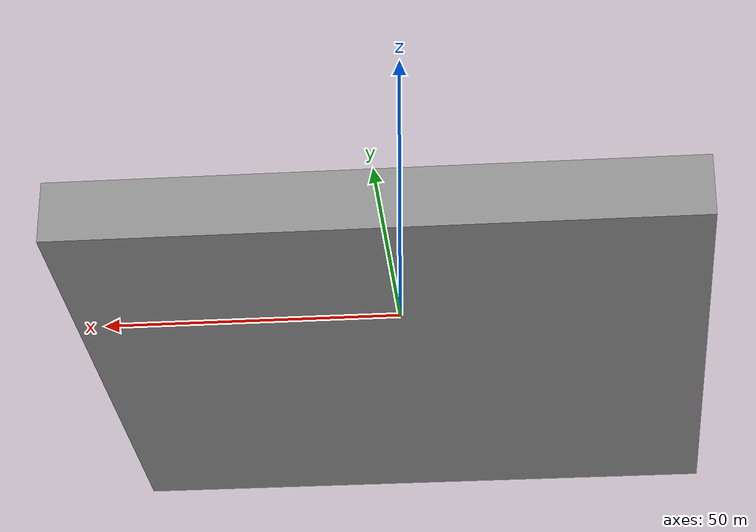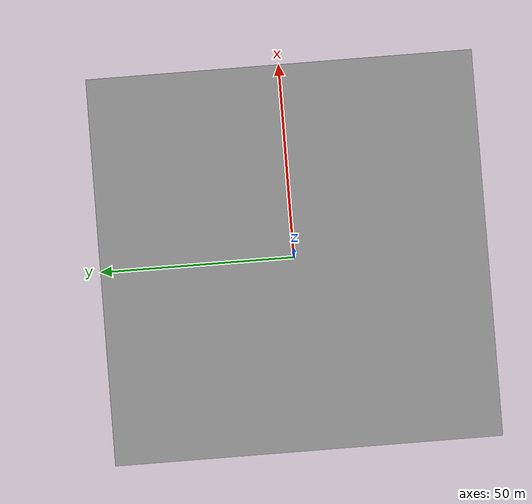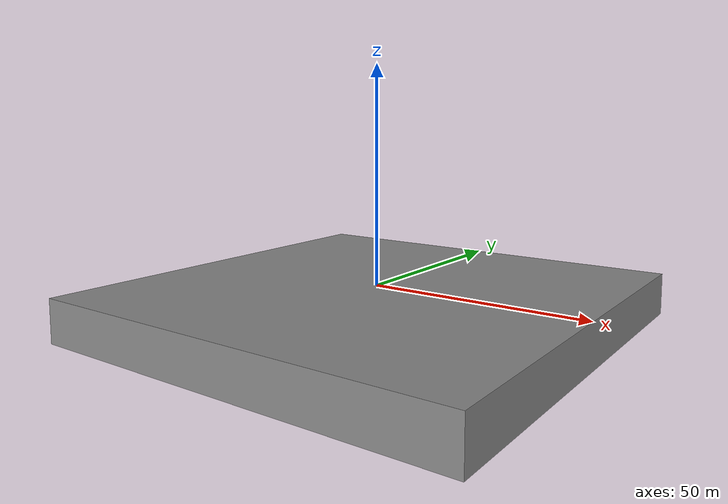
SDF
<?xml version='1.0'?>

<sdf version='1.6'>
  <model name='BipedalSpringMass'>

    <!-- GROUND -->

    <link name='ground'>
      <pose frame=''>0 0 -5 0 0.0 0.</pose>
      <inertial>
        <pose frame=''>0 0 0 0 0.0 0.</pose>
        <mass>0</mass>
        <inertia>
          <ixx>0</ixx>
          <ixy>0</ixy>
          <ixz>0</ixz>
          <iyy>0</iyy>
          <iyz>0</iyz>
          <izz>0</izz>
        </inertia>
      </inertial>
      <collision name='ground_collision'>
        <pose frame=''>0 0 0 0 0.0 0.</pose>
        <geometry>
          <box>
            <size>100.0 100.0 10.0</size>
          </box>
        </geometry>
      </collision>
      <visual name='ground_visual'>
        <pose frame=''>0 0 0 0 0.0 0.</pose>
        <geometry>
          <box>
            <size>100.0 100.0 10.0</size>
          </box>
        </geometry>
        <material>
          <diffuse>0.54 0.54 0.54 0.9</diffuse>
        </material>
      </visual>
    </link>

    <!-- BODY -->

    <link name='body_pre_z'/>
    <link name='body_pre_theta'/>

    <link name='body'>
      <pose frame=''>0 0 0 0 0 0</pose>
      <inertial>
        <pose frame=''>0 0 0 0 0 0</pose>
        <mass>.1</mass>
        <inertia>
          <ixx>100.0</ixx>
          <ixy>0</ixy>
          <ixz>0</ixz>
          <iyy>100.0</iyy>
          <iyz>0</iyz>
          <izz>100.0</izz>
        </inertia>
      </inertial>

      <visual name='body_visual'>
        <pose frame=''>0 0 0 0 0 0</pose>
        <geometry>
          <sphere>
             <radius> 0.3 </radius>
          </sphere>
        </geometry>
        <material>
          <diffuse>0.64 0.12 0.15 0.9</diffuse>
        </material>
      </visual>

    </link>

    <joint name='body_x' type='prismatic'>
      <child>body_pre_z</child>
      <parent>ground</parent>
      <axis>
        <xyz>1 0 0</xyz>
        <limit>
          <effort>0.0</effort>
        </limit>
        <dynamics>
          <damping>0</damping>
          <friction>0</friction>
          <spring_reference>0</spring_reference>
          <spring_stiffness>0</spring_stiffness>
        </dynamics>
        <use_parent_model_frame>1</use_parent_model_frame>
      </axis>
    </joint>

    <joint name='body_z' type='prismatic'>
      <child>body_pre_theta</child>
      <parent>body_pre_z</parent>
      <axis>
        <xyz>0 0 1</xyz>
        <limit>
          <effort>0.0</effort>
        </limit>
        <dynamics>
          <damping>0</damping>
          <friction>0</friction>
          <spring_reference>0</spring_reference>
          <spring_stiffness>0</spring_stiffness>
        </dynamics>
        <use_parent_model_frame>1</use_parent_model_frame>
      </axis>
    </joint>
    <joint name='body_theta' type='revolute'>
      <child>body</child>
      <parent>body_pre_theta</parent>
      <axis>
        <xyz>0 1 0</xyz>
        <limit>
          <effort>0.0</effort>
        </limit>
        <dynamics>
          <damping>0</damping>
          <friction>0</friction>
          <spring_reference>0</spring_reference>
          <spring_stiffness>0</spring_stiffness>
        </dynamics>
        <use_parent_model_frame>1</use_parent_model_frame>
      </axis>
    </joint>

    <!-- LEG 1 -->

    <link name='leg1_thigh'>
      <visual name='body_visual_ny'>
        <pose frame=''>0 0 0 0 0 0</pose>
        <geometry>
          <box>
            <size>0.1 0.1 0.75</size>
          </box>
        </geometry>
        <material>
          <diffuse>0.9 0.9 0.9 0.9</diffuse>
        </material>
      </visual>
    </link>

    <joint name='thigh1' type='revolute'>
      <child>leg1_thigh</child>
      <parent>body</parent>
      <axis>
        <xyz>0 1 0</xyz>
        <dynamics>
          <damping>1.</damping>
          <friction>0</friction>
          <spring_reference>0</spring_reference>
          <spring_stiffness>0</spring_stiffness>
        </dynamics>
        <use_parent_model_frame>1</use_parent_model_frame>
      </axis>
    </joint>

    <joint name='extension1' type='prismatic'>
      <child>foot1</child>
      <parent>leg1_thigh</parent>
      <axis>
        <xyz>0 0 -1</xyz>
        <limit>
          <upper>.8</upper>
          <stiffness>10000</stiffness>
          <dissipation>1.0</dissipation>
        </limit>
        <dynamics>
          <damping>0</damping>
          <friction>0</friction>
          <spring_reference>0</spring_reference>
          <spring_stiffness>0</spring_stiffness>
        </dynamics>
        <use_parent_model_frame>1</use_parent_model_frame>
      </axis>
    </joint>

    <link name='foot1'>
      <pose frame=''>0 0 0.0 0 0 0</pose>
      <inertial>
        <pose frame=''>0 0 0 0 0 0</pose>
        <mass>0.01</mass>
        <inertia>
          <ixx>0.01</ixx>
          <ixy>0</ixy>
          <ixz>0</ixz>
          <iyy>0.01</iyy>
          <iyz>0</iyz>
          <izz>0.01</izz>
        </inertia>
      </inertial>
      <collision name='foot1_collision'>
        <pose frame=''>0 1 0 0 0 0</pose>
        <geometry>
          <box>
            <size>0.05 0.05 2.0</size>
          </box>
        </geometry>
      </collision>
      <visual name='foot1_visual'>
        <pose frame=''>0 0 0 0 0 0</pose>
        <geometry>
          <box>
            <size>0.05 0.05 2.0</size>
          </box>
        </geometry>
        <material>
          <diffuse>0.9 0.9 0.9 0.9</diffuse>
        </material>
      </visual>
    </link>

    <!-- LEG 2 -->

    <link name='leg2_thigh'>
      <visual name='body_visual_ny'>
        <pose frame=''>0 0.0 0 0 0 0</pose>
        <geometry>
          <box>
            <size>0.1 0.1 0.75</size>
          </box>
        </geometry>
        <material>
          <diffuse>0.64 0.12 0.15 0.9</diffuse>
        </material>
      </visual>
    </link>

    <joint name='thigh2' type='revolute'>
      <child>leg2_thigh</child>
      <parent>body</parent>
      <axis>
        <xyz>0 1 0</xyz>
        <dynamics>
          <damping>1.</damping>
          <friction>0</friction>
          <spring_reference>0</spring_reference>
          <spring_stiffness>0</spring_stiffness>
        </dynamics>
        <use_parent_model_frame>1</use_parent_model_frame>
      </axis>
    </joint>

    <joint name='extension2' type='prismatic'>
      <child>foot2</child>
      <parent>leg2_thigh</parent>
      <axis>
        <xyz>0 0 -1</xyz>
        <limit>
          <upper>0.8</upper>
          <stiffness>10000</stiffness>
          <dissipation>1.0</dissipation>
        </limit>
        <dynamics>
          <damping>0</damping>
          <friction>0</friction>
          <spring_reference>0</spring_reference>
          <spring_stiffness>0</spring_stiffness>
        </dynamics>
        <use_parent_model_frame>1</use_parent_model_frame>
      </axis>
    </joint>

    <link name='foot2'>
      <pose frame=''>0 0 0.0 0 0 0</pose>
      <inertial>
        <pose frame=''>0 0 0 0 0 0</pose>
        <mass>0.01</mass>
        <inertia>
          <ixx>0.01</ixx>
          <ixy>0</ixy>
          <ixz>0</ixz>
          <iyy>0.01</iyy>
          <iyz>0</iyz>
          <izz>0.01</izz>
        </inertia>
      </inertial>
      <collision name='foot2_collision'>
        <pose frame=''>0 -1 0 0 0 0</pose>
        <geometry>
          <box>
            <size>0.05 0.05 2.0</size>
          </box>
        </geometry>
      </collision>
      <visual name='foot2_visual'>
        <pose frame=''>0 0 0 0 0 0</pose>
        <geometry>
          <box>
            <size>0.05 0.05 2.0</size>
          </box>
        </geometry>
        <material>
          <diffuse>0.64 0.12 0.15 0.9</diffuse>
        </material>
      </visual>
    </link>

  </model>
</sdf>
